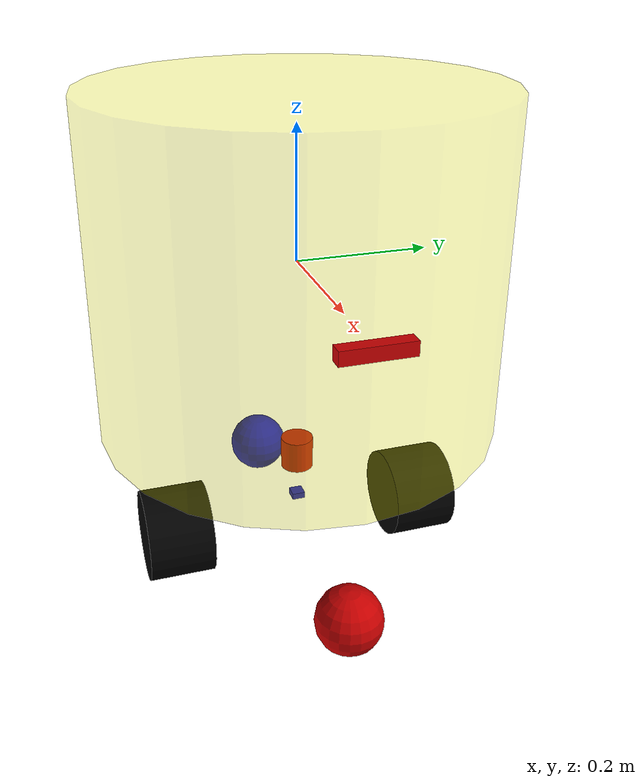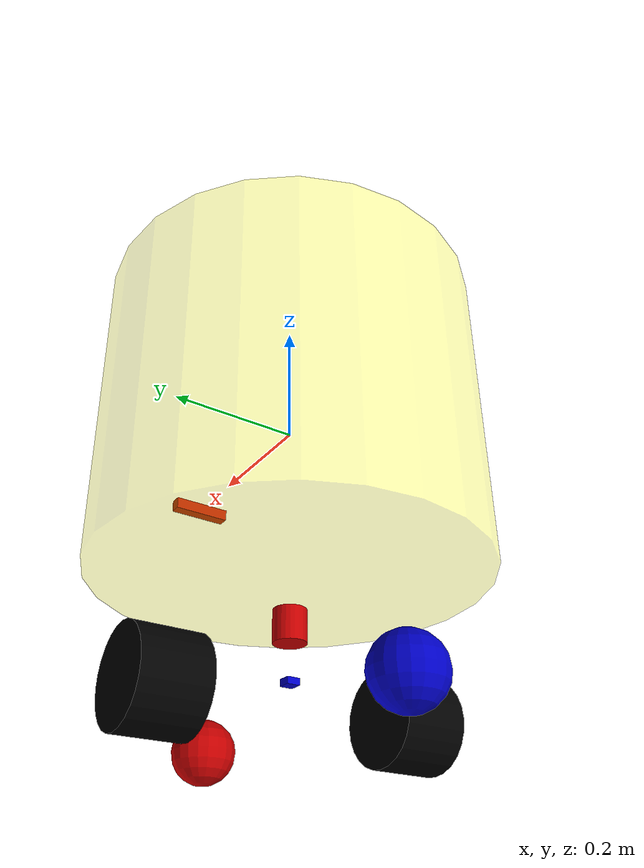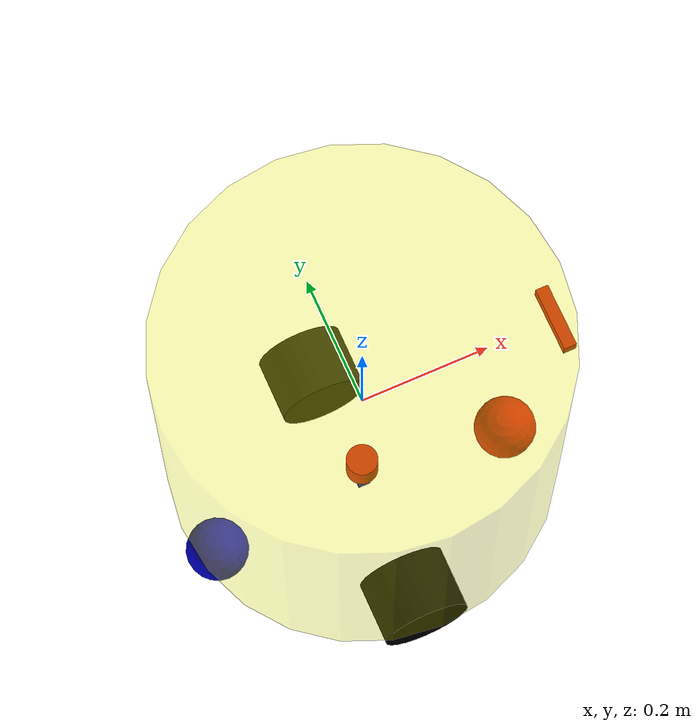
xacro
<?xml version="1.0"?>
<robot name="circularbot_urdf" xmlns:xacro="http://www.ros.org/wiki/xacro">

  <xacro:include filename="$(find demobot2_description)/urdf/circularbot/circularbot_essential.xacro" />

  <link name="base_footprint"/>

  <!-- base_link --> <!--Actual body/chassis of the robot-->
  <link name="base_link">
    <!--KDL does not support a root link with an inertia.  As a workaround, you can add an extra dummy link to your URDF.-->
    <visual>
      <origin xyz="0 0 0" rpy="0 0 0" />
      <geometry>
          <cylinder length="${base_height}" radius="${base_radius}" />
      </geometry>
      <material name="transyellow">
        <color rgba="1.0 1.0 0.0 0.3"/>
      </material>
    </visual>

    <collision>
      <origin xyz="0 0 0" rpy="0 0 0 " />
      <geometry>
          <cylinder length="${base_height}" radius="${base_radius}" />
      </geometry>
    </collision>
  </link>

  <link name="imu_link">
    <visual>
      <origin xyz="0 0 0" rpy="0 0 0" />
      <geometry>
	      <box size="${imu_length} ${imu_width} ${imu_height}" />
      </geometry>
      <material name="Blue" />
    </visual>
  </link>

  <link name="lidar_link">
    <visual>
      <origin xyz="0 0 0" rpy="0 0 0" />
      <geometry>
	      <cylinder length="${lidar_height}" radius="${lidar_radius}" />
      </geometry>
      <material name="Red" />
    </visual>
  </link>

  <link name="camera_link">
    <visual>
      <origin xyz="0 0 0" rpy="0 0 0" />
      <geometry>
	      <box size="${camera_length} ${camera_width} ${camera_height}" />
      </geometry>
      <material name="Red" />
    </visual>
    <collision>
      <origin xyz="0 0 0" rpy="0 0 0 " />
      <geometry>
        <box size="${camera_length} ${camera_width} ${camera_height}" />
      </geometry>
    </collision>
    <inertial>
      <mass value="${camera_mass}" />
      <origin xyz="0 0 0" />
      <xacro:box_inertia m="${camera_mass}" x="${camera_length}" y="${camera_width}" z="${camera_height}" />
    </inertial>
  </link>

  <link name="camera_depth_frame"/>

  <joint name="base_joint" type="fixed">
      <parent link="base_link"/>
      <child link="base_footprint" />
      <origin xyz="0 0 -0.5" rpy="0 0 0"/>
  </joint>

  <joint name="imu_joint" type="fixed">
    <parent link="base_link"/>
    <child link="imu_link"/>
    <origin xyz="0.0 0.0 -0.4" rpy="0 0 0"/>
  </joint>

  <joint name="lidar_joint" type="fixed">
    <parent link="base_link"/>
    <child link="lidar_link"/>
    <origin xyz="0 0 -0.32" rpy="0 0 0"/> <!-- default z: -0.32 -->
  </joint>

  <joint name="camera_joint" type="fixed">
    <parent link="base_link"/>
    <child link="camera_link"/>
    <origin xyz="0.31 0 0" rpy="0 0 0"/>
  </joint>

  <joint name="camera_depth_joint" type="fixed">
    <parent link="camera_link"/>
    <child link="camera_depth_frame"/>
    <origin xyz="0.0 0 0" rpy="${-1.0 * M_PI_2} 0 ${-1.0 * M_PI_2}"/>
  </joint>

  <!-- Wheels -->
  <xacro:wheel lr="left" parent="base_link" dir="1" z_offset="-0.43" roll="${-1.0 * M_PI_2}"/>
  <xacro:wheel lr="right" parent="base_link" dir="-1" z_offset="-0.43" roll="${-1.0 * M_PI_2}"/>

  <!-- Casters -->
  <xacro:caster fb="front" parent="base_link" dir="1" z_offset="-0.449" roll="0" color="Red"/>
  <xacro:caster fb="back" parent="base_link" dir="-1" z_offset="-0.449" roll="0" color="Blue"/>

</robot>

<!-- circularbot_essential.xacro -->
<robot name="circularbot_essential" xmlns:xacro="http://www.ros.org/wiki/xacro">

<!-- Defining the colors used in this robot -->
  <material name="Black">
    <color rgba="0.0 0.0 0.0 1.0"/>
  </material>

  <material name="White">
    <color rgba="1.0 1.0 1.0 1.0"/>
  </material>

  <material name="Red">
    <color rgba="0.8 0.0 0.0 1.0"/>
  </material>

  <material name="Green">
    <color rgba="0.0 0.8 0.0 1.0"/>
  </material>

  <material name="Blue">
    <color rgba="0.0 0.0 0.8 1.0"/>
  </material>

  <!-- PROPERTY LIST -->
  <!--All units in m-kg-s-radians unit system -->
  <xacro:property name="M_PI" value="3.1415926535897931" />
  <xacro:property name="M_PI_2" value="1.570796327" />
  <xacro:property name="DEG_TO_RAD" value="0.017453293" />

  <!-- Body -->
  <xacro:property name="base_radius" value="0.3" />
  <xacro:property name="base_height" value="0.5" />
  <xacro:property name="base_mass" value="50" /> <!--kg-->

  <!-- Wheels -->
  <xacro:property name="wheel_diameter" value="0.14" />
  <xacro:property name="wheel_radius" value="0.07" />
  <xacro:property name="wheel_height" value="0.1" />
  <xacro:property name="wheel_mass" value="2" />
  <xacro:property name="wheel_spacing" value="0.4" />

  <!-- Caster -->
  <xacro:property name="caster_height" value="0.04" />
  <xacro:property name="caster_diameter" value="0.1" />
  <xacro:property name="caster_radius" value="0.05" />
  <xacro:property name="caster_mass" value="1.0" />
  <xacro:property name="caster_spacing" value="0.5" />

  <!-- IMU -->
  <xacro:property name="imu_length" value="0.02" />
  <xacro:property name="imu_width" value="0.02" />
  <xacro:property name="imu_height" value="0.01" />
  <xacro:property name="imu_mass" value="0.01" /> <!--kg-->

  <!-- Lidar -->
  <xacro:property name="lidar_diameter" value="0.05" />
  <xacro:property name="lidar_radius" value="0.025" />
  <xacro:property name="lidar_height" value="0.05" />
  <xacro:property name="lidar_mass" value="0.05" />

  <!-- Depth Camera -->
  <xacro:property name="camera_length" value="0.02" />
  <xacro:property name="camera_width" value="0.1" />
  <xacro:property name="camera_height" value="0.02" />
  <xacro:property name="camera_mass" value="0.01" /> <!--kg-->

  <!-- cylinder_inertia -->
  <xacro:macro name="cylinder_inertia" params="m r h">
    <inertia  ixx="${m*(3*r*r+h*h)/12}" ixy = "0" ixz = "0"
              iyy="${m*(3*r*r+h*h)/12}" iyz = "0"
              izz="${m*r*r/2}" />
  </xacro:macro>

  <!--box_inertia-->
  <xacro:macro name="box_inertia" params="m x y z">
    <inertia  ixx="${m*(y*y+z*z)/12}" ixy = "0" ixz = "0"
      iyy="${m*(x*x+z*z)/12}" iyz = "0"
      izz="${m*(x*x+z*z)/12}"
    />
  </xacro:macro>

  <!--sphere_inertia-->
  <xacro:macro name="sphere_inertia" params="m r">
    <inertia  ixx="${2*m*r*r/5}" ixy = "0" ixz = "0"
      iyy="${2*m*r*r/5}" iyz = "0"
      izz="${2*m*r*r/5}"
    />
  </xacro:macro>

  <xacro:macro name="wheel" params="lr parent dir z_offset roll"> <!-- lr: left, right -->
    <link name="${lr}_wheel_link">
      <visual>
        <origin xyz="0 0 0" rpy="0 0 0 " />
        <geometry>
          <cylinder length="${wheel_height}" radius="${wheel_radius}" />
        </geometry>
        <material name="Black" />
      </visual>
      <collision>
        <origin xyz="0 0 0" rpy="0 0 0 " />
        <geometry>
          <cylinder length="${wheel_height}" radius="${wheel_radius}" />
        </geometry>
      </collision>
      <inertial>
        <mass value="${wheel_mass}" />
        <origin xyz="0 0 0" />
        <xacro:cylinder_inertia  m="${wheel_mass}" r="${wheel_radius}" h="${wheel_height}" />
      </inertial>
    </link>

    <joint name="${lr}_wheel_joint" type="continuous">
      <parent link="${parent}"/>
      <child link="${lr}_wheel_link"/>
      <origin xyz="0 ${dir * wheel_spacing / 2} ${z_offset}" rpy="${roll} 0 0" />
      <axis xyz="0 0 1" />
      <limit effort="100" velocity="100"/>
      <dynamics damping="0.0" friction="0.1"/>
    </joint>
  </xacro:macro>

  <!-- Visualization for real robot -->
  <xacro:macro name="fixed_wheel" params="lr parent dir z_offset roll"> <!-- lr: left, right -->
    <link name="${lr}_wheel_link">
      <visual>
        <origin xyz="0 0 0" rpy="0 0 0 " />
        <geometry>
          <cylinder length="${wheel_height}" radius="${wheel_radius}" />
        </geometry>
        <material name="Black" />
      </visual>
      <collision>
        <origin xyz="0 0 0" rpy="0 0 0 " />
        <geometry>
          <cylinder length="${wheel_height}" radius="${wheel_radius}" />
        </geometry>
      </collision>
      <inertial>
        <mass value="${wheel_mass}" />
        <origin xyz="0 0 0" />
        <xacro:cylinder_inertia  m="${wheel_mass}" r="${wheel_radius}" h="${wheel_height}" />
      </inertial>
    </link>

    <joint name="${lr}_wheel_joint" type="fixed">
      <parent link="${parent}"/>
      <child link="${lr}_wheel_link"/>
      <origin xyz="0 ${dir * wheel_spacing / 2} ${z_offset}" rpy="${roll} 0 0" />
      <axis xyz="0 0 1" rpy="0 0 0" />
    </joint>
  </xacro:macro>

  <xacro:macro name="caster" params="fb parent dir z_offset roll color"> <!-- fb: front, back -->
    <link name="${fb}_caster_link">
      <visual>
        <origin xyz="0 0 0" rpy="0 0 0 " />
        <geometry>
          <sphere radius="${caster_radius}" />
        </geometry>
        <material name="${color}" />
      </visual>
      <collision>
        <origin xyz="0 0 0" rpy="0 0 0 " />
        <geometry>
          <sphere radius="${caster_radius}" />
        </geometry>
      </collision>
      <inertial>
        <mass value="${caster_mass}" />
        <origin xyz="0 0 0" />
        <xacro:sphere_inertia  m="${caster_mass}" r="${caster_radius}" />
      </inertial>
    </link>

    <joint name="${fb}_caster_joint" type="fixed">
      <parent link="${parent}"/>
      <child link="${fb}_caster_link"/>
      <origin xyz="${dir * caster_spacing / 2} 0 ${z_offset}" rpy="${roll} 0 0" />
      <axis xyz="1 1 1" rpy="0 0 0" />
    </joint>
  </xacro:macro>

</robot>
